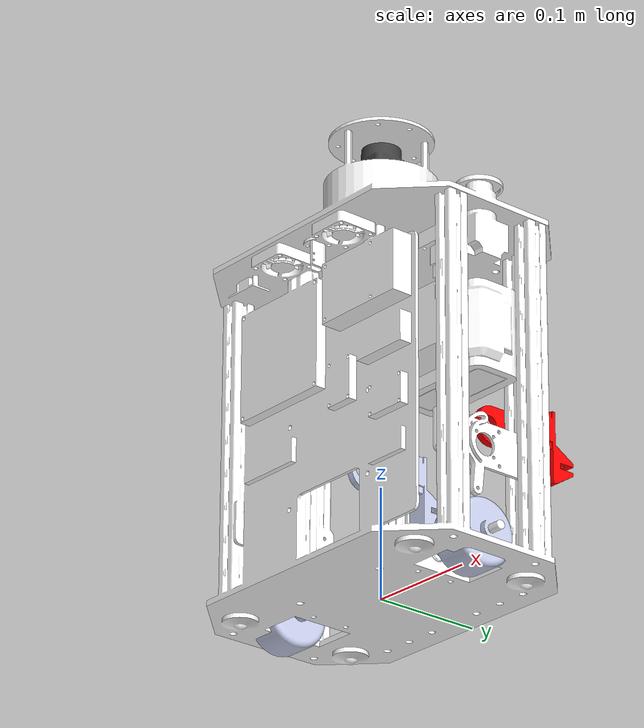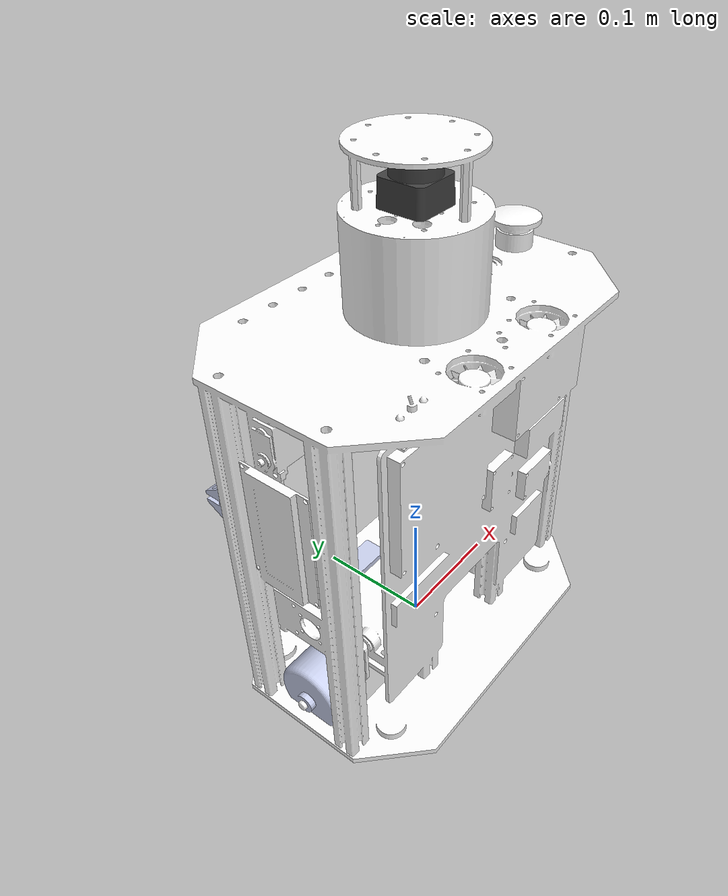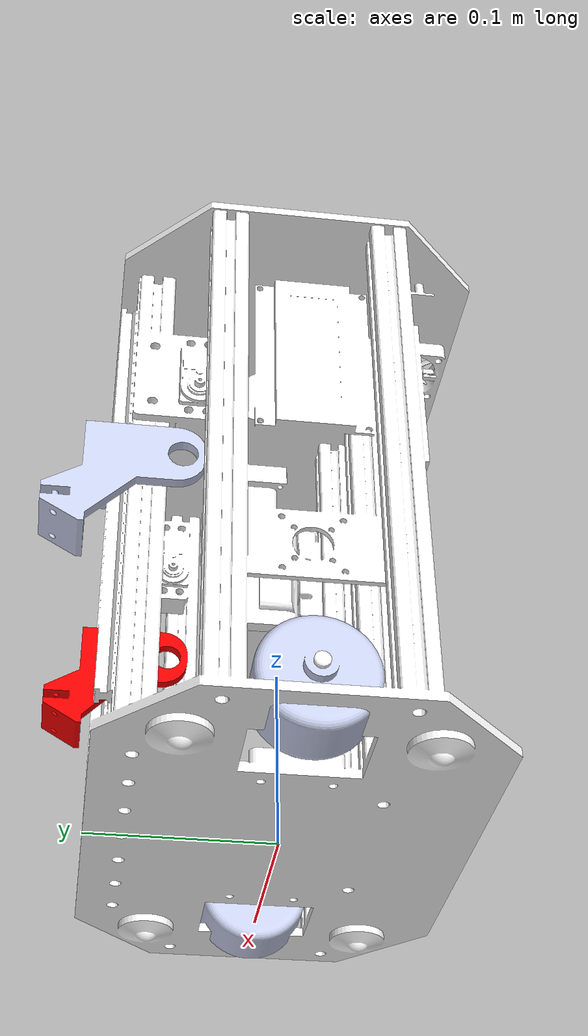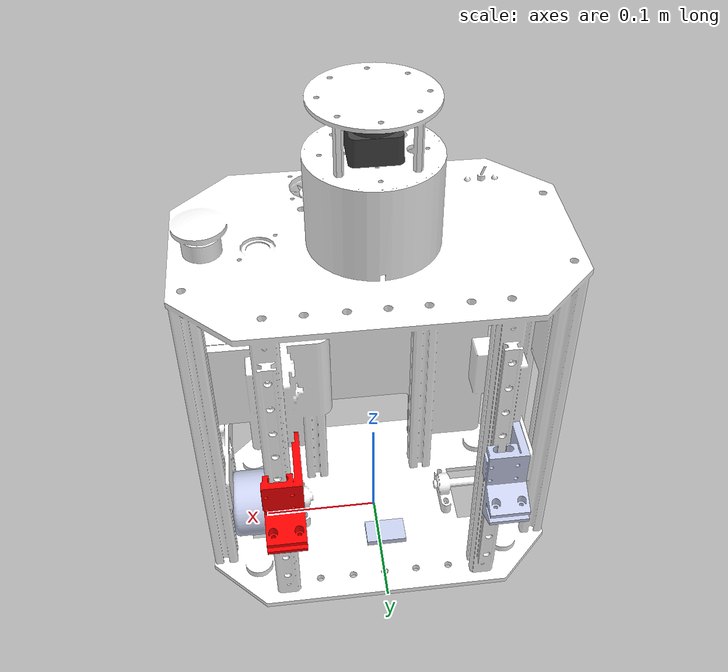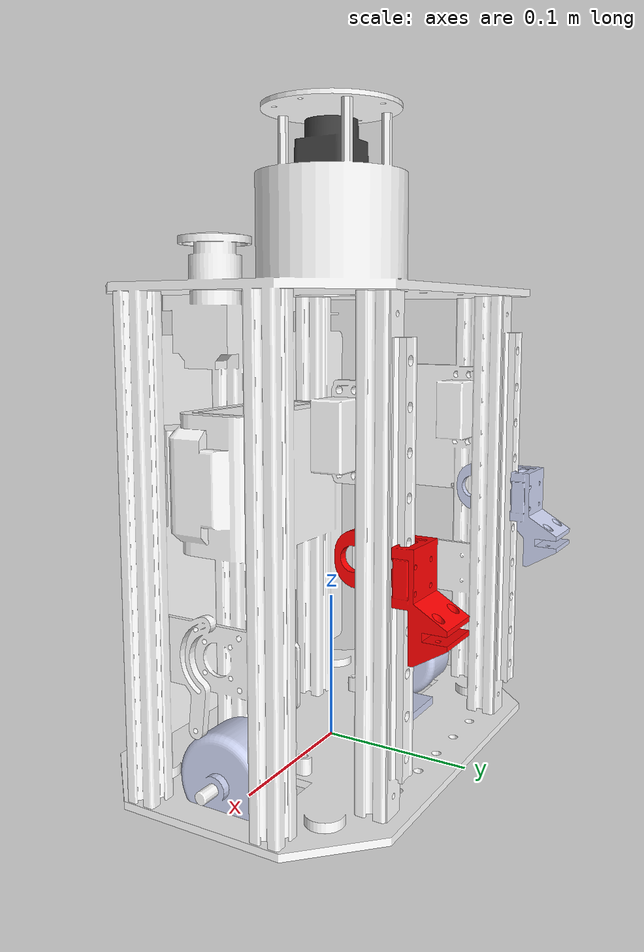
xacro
<?xml version="1.0" encoding="utf-8"?>
<robot xmlns:xacro="http://www.ros.org/wiki/xacro"  name="robot">

  <!-- Pour la gestion des chemins absolus differents sur nos 2 installations -->
  <xacro:property name="repo_path" value="/home/julien/github_ros/" />
  <!--xacro:property name="repo_path" value="/home/kyliban/Documents/Github/Robot_ros2_2024"/-->

  <xacro:include filename="robot_core.xacro" />
  <xacro:include filename="gazebo_plugins.xacro" />

</robot>

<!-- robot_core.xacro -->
<robot xmlns:xacro="http://www.ros.org/wiki/xacro" >

  <link name="base_link">
    <inertial>
      <origin
        xyz="-0.01422 -0.00104 0.1648"
        rpy="0 0 0" />
      <mass
        value="5" />
      <inertia
        ixx="0.0"
        ixy="-0.00000060186"
        ixz="-0.00371774"
        iyy="0.0"
        iyz="0.00092280"
        izz="0.05153320" />

    </inertial>
    <visual>
      <origin
        xyz="0 0 0"
        rpy="-1.5708 0 3.1415" />
      <geometry>
        <mesh
          filename="file://${repo_path}Robot/dev_ws/src/robot_description/meshes/base_link.STL" />
      </geometry>
      <material
        name="">
        <color
          rgba="1 1 1 1" />
      </material>
    </visual>
    <collision>
      <origin
        xyz="0 0 0"
        rpy="-1.5708 0 3.1415" />
      <geometry>
        <mesh
          filename="file://${repo_path}Robot/dev_ws/src/robot_description/meshes/base_link.STL" />
      </geometry>
    </collision>
  </link>
  <link name="left_wheel_link">
    <inertial>
      <origin
        xyz="0.0225 -4.8117E-16 0"
        rpy="0 0 0" />
      <mass
        value="0.2" />
      <inertia
        ixx="4.2948E-05"
        ixy="-6.9997E-22"
        ixz="2.4627E-21"
        iyy="3.147E-05"
        iyz="-2.647E-23"
        izz="3.147E-05" />
    </inertial>
    <visual>
      <origin
        xyz="-0.018 0 0"
        rpy="0 0 0" />
      <geometry>
        <mesh
          filename="file://${repo_path}Robot/dev_ws/src/robot_description/meshes/left_wheel_link.STL" />
      </geometry>
      <material
        name="">
        <color
          rgba="0.79216 0.81961 0.93333 1" />
      </material>
    </visual>
    <collision>
      <origin
      xyz="-0.018 0 0"
      rpy="0 0 0" />
      <geometry>
        <mesh
          filename="file://${repo_path}Robot/dev_ws/src/robot_description/meshes/left_wheel_link.STL" />
      </geometry>
    </collision>
  </link>
  <joint name="left_wheel_joint"
    type="continuous">
    <origin
      xyz="0.1175 0 0.02"
      rpy="1.564 0.0 3.1416" />
    <parent
      link="base_link" />
    <child
      link="left_wheel_link" />
    <axis
      xyz="1 0 0" />
    <limit
      lower="0"
      upper="0"
      effort="0"
      velocity="0" />
  </joint>
  <link name="right_wheel_link">
    <inertial>
      <origin
        xyz="0.0225 -4.1842E-16 3.4694E-18"
        rpy="0 0 0" />
      <mass
        value="0.2" />
      <inertia
        ixx="4.2948E-05"
        ixy="3.0585E-20"
        ixz="1.8206E-21"
        iyy="3.147E-05"
        iyz="1.6411E-21"
        izz="3.147E-05" />
    </inertial>
    <visual>
      <origin
        xyz="-0.018 0 0"
        rpy="0 0 0" />
      <geometry>
        <mesh
          filename="file://${repo_path}Robot/dev_ws/src/robot_description/meshes/right_wheel_link.STL" />
      </geometry>
      <material
        name="">
        <color
          rgba="0.79216 0.81961 0.93333 1" />
      </material>
    </visual>
    <collision>
      <origin
        xyz="0 0 0"
        rpy="0 0 0" />
      <geometry>
        <mesh
          filename="file://${repo_path}Robot/dev_ws/src/robot_description/meshes/right_wheel_link.STL" />
      </geometry>
    </collision>
  </link>
  <joint name="right_wheel_joint"
    type="continuous">
    <origin
      xyz="-0.1175 0 0.02"
      rpy="1.564 0.0 3.1416" />
    <parent
      link="base_link" />
    <child
      link="right_wheel_link" />
    <axis
      xyz="1 0 0" />
  </joint>
  <link name="gripper_left_link">
    <inertial>
      <origin
        xyz="0.0069271 -0.002 -0.0058473"
        rpy="0 0 0" />
      <mass
        value="0.034943" />
      <inertia
        ixx="2.1133E-05"
        ixy="-1.9167E-06"
        ixz="2.8841E-06"
        iyy="1.4367E-05"
        iyz="6.2513E-06"
        izz="1.2673E-05" />
    </inertial>
    <visual>
      <origin
        xyz="0 0 0"
        rpy="1.5708 3.1415 0" />
      <geometry>
        <mesh
          filename="file://${repo_path}Robot/dev_ws/src/robot_description/meshes/gripper_left_link.STL" />
      </geometry>
      <material
        name="">
        <color
          rgba="1 0 0 1" />
      </material>
    </visual>
    <collision>
      <origin
        xyz="0 0 0"
        rpy="0 0 0" />
      <geometry>
        <mesh
          filename="file://${repo_path}Robot/dev_ws/src/robot_description/meshes/gripper_left_link.STL" />
      </geometry>
    </collision>
  </link>
  <joint name="gripper_left_joint"
    type="prismatic">
    <origin
      xyz="0.085 0.105 0.0"
      rpy="-3.1416 0 0" />
    <parent
      link="base_link" />
    <child
      link="gripper_left_link" />
    <axis
      xyz="0 0 -1" />
    <limit
      lower="0.05"
      upper="0.25"
      effort="100"
      velocity="1" />
  </joint>
  <link name="gripper_right_link">
    <inertial>
      <origin
        xyz="0.0069271 0.0030988 0.00025266"
        rpy="0 0 0" />
      <mass
        value="0.034943" />
      <inertia
        ixx="2.1133E-05"
        ixy="-1.9167E-06"
        ixz="2.8841E-06"
        iyy="1.4367E-05"
        iyz="6.2513E-06"
        izz="1.2673E-05" />
    </inertial>
    <visual>
      <origin
        xyz="0 0 0"
        rpy="1.5708 3.1415 0" />
      <geometry>
        <mesh
          filename="file://${repo_path}Robot/dev_ws/src/robot_description/meshes/gripper_right_link.STL" />
      </geometry>
      <material
        name="">
        <color
          rgba="0.79216 0.81961 0.93333 1" />
      </material>
    </visual>
    <collision>
      <origin
        xyz="0 0 0"
        rpy="0 0 0" />
      <geometry>
        <mesh
          filename="file://${repo_path}Robot/dev_ws/src/robot_description/meshes/gripper_right_link.STL" />
      </geometry>
    </collision>
  </link>
  <joint name="gripper_right_joint"
    type="prismatic">
    <origin
      xyz="-0.085 0.105 0.0"
      rpy="-3.1416 0 0" />
    <parent
      link="base_link" />
    <child
      link="gripper_right_link" />
    <axis
      xyz="0 0 -1" />
    <limit
      lower="0.05"
      upper="0.25"
      effort="100"
      velocity="1" />
  </joint>
  <link name="lidar_link">
    <inertial>
      <origin
        xyz="9.9508E-08 4.832E-08 -0.015186"
        rpy="0 0 0" />
      <mass
        value="0.041055" />
      <inertia
        ixx="7.8469E-06"
        ixy="-1.4154E-11"
        ixz="3.1419E-12"
        iyy="7.8472E-06"
        iyz="9.3363E-12"
        izz="8.5515E-06" />
    </inertial>
    <visual>
      <origin
        xyz="0 0 0"
        rpy="3.1415 0 0" />
      <geometry>
        <mesh
          filename="file://${repo_path}Robot/dev_ws/src/robot_description/meshes/lidar_link.STL" />
      </geometry>
      <material
        name="">
        <color
          rgba="0.25098 0.25098 0.25098 1" />
      </material>
    </visual>
    <collision>
      <origin
        xyz="0 0 0"
        rpy="0 0 0" />
      <geometry>
        <mesh
          filename="file://${repo_path}Robot/dev_ws/src/robot_description/meshes/lidar_link.STL" />
      </geometry>
    </collision>
  </link>
  <joint name="lidar_joint"
    type="continuous">
    <origin
      xyz="0 0 0.383"
      rpy="0 0 -3.1416" />
    <parent
      link="base_link" />
    <child
      link="lidar_link" />
    <axis
      xyz="0 0 1" />
  </joint>
  <link name="imu_link">
    <inertial>
      <origin
        xyz="9.9747E-18 1.9429E-16 0.0025"
        rpy="0 0 0" />
      <mass
        value="0.00374" />
      <inertia
        ixx="1.5864E-07"
        ixy="1.1606E-24"
        ixz="-9.1005E-24"
        iyy="3.6808E-07"
        iyz="7.7908E-23"
        izz="5.1113E-07" />
    </inertial>
    <visual>
      <origin
        xyz="0 0 0"
        rpy="0 0 0" />
      <geometry>
        <mesh
          filename="file://${repo_path}Robot/dev_ws/src/robot_description/meshes/imu_link.STL" />
      </geometry>
      <material
        name="">
        <color
          rgba="0.79216 0.81961 0.93333 1" />
      </material>
    </visual>
    <collision>
      <origin
        xyz="0 0 0"
        rpy="0 0 0" />
      <geometry>
        <mesh
          filename="file://${repo_path}Robot/dev_ws/src/robot_description/meshes/imu_link.STL" />
      </geometry>
    </collision>
  </link>
<joint name="imu_joint"
    type="fixed">
    <origin
      xyz="-0.0032751 0.05685 0.029"
      rpy="0 0 0" />
    <parent
      link="base_link" />
    <child
      link="imu_link" />
    <axis
      xyz="0 0 0" />
  </joint>

</robot>
